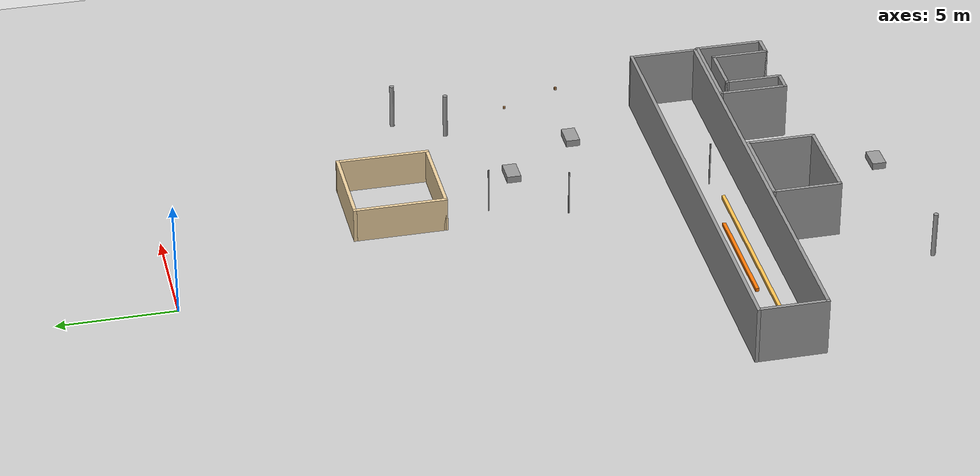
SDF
<sdf version="1.6">
 <world name="default">
  <model name="ground_plane">
   <static>1</static>
   <link name="link">
    <collision name="collision">
     <geometry><plane><normal>0 0 1</normal><size>105 105</size></plane></geometry>
     <surface>
      <contact><collide_bitmask>65535</collide_bitmask></contact>
      <friction><ode><mu>100</mu><mu2>50</mu2></ode></friction>
     </surface>
    </collision>
    <visual name="visual">
     <cast_shadows>0</cast_shadows>
     <geometry><plane><normal>0 0 1</normal><size>105 105</size></plane></geometry>
     <material>
      <script><uri>file://media/materials/scripts/gazebo.material</uri><name>Gazebo/Grey</name></script>
     </material>
    </visual>
   </link>
  </model>
  <model name="base3x20_2">
   <pose>1.5051 -23.232 0 0 -0 0</pose>
   <link name="Wall_16">
    <collision name="Wall_16_Collision">
     <geometry><box><size>3 0.15 2.5</size></box></geometry>
     <pose>0 0 1.25 0 -0 0</pose>
    </collision>
    <visual name="Wall_16_Visual">
     <pose>0 0 1.25 0 -0 0</pose>
     <geometry><box><size>3 0.15 2.5</size></box></geometry>
     <material>
      <script><uri>file://media/materials/scripts/gazebo.material</uri><name>Gazebo/Grey</name></script>
      <ambient>1 1 1 1</ambient>
     </material>
     <meta><layer>0</layer></meta>
    </visual>
    <pose>-9.925 -0 0 0 -0 -1.5708</pose>
   </link>
   <link name="Wall_17">
    <collision name="Wall_17_Collision">
     <geometry><box><size>20 0.15 2.5</size></box></geometry>
     <pose>0 0 1.25 0 -0 0</pose>
    </collision>
    <visual name="Wall_17_Visual">
     <pose>0 0 1.25 0 -0 0</pose>
     <geometry><box><size>20 0.15 2.5</size></box></geometry>
     <material>
      <script><uri>file://media/materials/scripts/gazebo.material</uri><name>Gazebo/Grey</name></script>
      <ambient>1 1 1 1</ambient>
     </material>
     <meta><layer>0</layer></meta>
    </visual>
    <pose>-0 -1.425 0 0 -0 0</pose>
   </link>
   <link name="Wall_18">
    <collision name="Wall_18_Collision">
     <geometry><box><size>3 0.15 2.5</size></box></geometry>
     <pose>0 0 1.25 0 -0 0</pose>
    </collision>
    <visual name="Wall_18_Visual">
     <pose>0 0 1.25 0 -0 0</pose>
     <geometry><box><size>3 0.15 2.5</size></box></geometry>
     <material>
      <script><uri>file://media/materials/scripts/gazebo.material</uri><name>Gazebo/Grey</name></script>
      <ambient>1 1 1 1</ambient>
     </material>
     <meta><layer>0</layer></meta>
    </visual>
    <pose>9.925 -0 0 0 -0 1.5708</pose>
   </link>
   <link name="Wall_19">
    <collision name="Wall_19_Collision">
     <geometry><box><size>20 0.15 2.5</size></box></geometry>
     <pose>0 0 1.25 0 -0 0</pose>
    </collision>
    <visual name="Wall_19_Visual">
     <pose>0 0 1.25 0 -0 0</pose>
     <geometry><box><size>20 0.15 2.5</size></box></geometry>
     <material>
      <script><uri>file://media/materials/scripts/gazebo.material</uri><name>Gazebo/Grey</name></script>
      <ambient>1 1 1 1</ambient>
     </material>
     <meta><layer>0</layer></meta>
    </visual>
    <pose>-0 1.425 0 0 -0 3.14159</pose>
   </link>
   <static>1</static>
  </model>
  <model name="bar10x0.15x0.15">
   <pose>-1.69484 -23.7489 0 0 -0 0</pose>
   <link name="Wall_5">
    <collision name="Wall_5_Collision">
     <geometry><box><size>10 0.15 0.15</size></box></geometry>
     <pose>0 0 0.075 0 -0 0</pose>
    </collision>
    <visual name="Wall_5_Visual">
     <pose>0 0 0.075 0 -0 0</pose>
     <geometry><box><size>10 0.15 0.15</size></box></geometry>
     <material>
      <script><uri>file://media/materials/scripts/gazebo.material</uri><name>Gazebo/Grey</name></script>
      <ambient>1 0.764706 0.305882 1</ambient>
     </material>
     <meta><layer>0</layer></meta>
    </visual>
   </link>
   <static>1</static>
  </model>
  <model name="bar5x0.15x0.15">
   <pose>-1.24356 -23.2103 0 0 -0 0</pose>
   <link name="Wall_12">
    <collision name="Wall_12_Collision">
     <geometry><box><size>5 0.15 0.15</size></box></geometry>
     <pose>0 0 0.075 0 -0 0</pose>
    </collision>
    <visual name="Wall_12_Visual">
     <pose>0 0 0.075 0 -0 0</pose>
     <geometry><box><size>5 0.15 0.15</size></box></geometry>
     <material>
      <script><uri>file://media/materials/scripts/gazebo.material</uri><name>Gazebo/Grey</name></script>
      <ambient>0.996078 0.47451 0.0196078 1</ambient>
     </material>
     <meta><layer>0</layer></meta>
    </visual>
   </link>
   <static>1</static>
  </model>
  <model name="unit_box_100x60x30cm_2">
   <link name="link">
    <inertial>
     <mass>1</mass>
     <inertia>
      <ixx>0.166667</ixx>
      <ixy>0</ixy>
      <ixz>0</ixz>
      <iyy>0.166667</iyy>
      <iyz>0</iyz>
      <izz>0.166667</izz>
     </inertia>
    </inertial>
    <visual name="visual">
     <geometry><box><size>1 0.6 0.3</size></box></geometry>
     <material>
      <script><name>Gazebo/Grey</name><uri>file://media/materials/scripts/gazebo.material</uri></script>
      <shader type="vertex"><normal_map>__default__</normal_map></shader>
      <ambient>0.3 0.3 0.3 1</ambient>
      <diffuse>0.7 0.7 0.7 1</diffuse>
      <specular>0.01 0.01 0.01 1</specular>
      <emissive>0 0 0 1</emissive>
     </material>
    </visual>
    <collision name="collision">
     <geometry><box><size>1 0.6 0.3</size></box></geometry>
     <surface>
      <friction>
       <ode><mu>1</mu><mu2>1</mu2><fdir1>0 0 0</fdir1><slip1>0</slip1><slip2>0</slip2></ode>
       <torsional>
        <coefficient>1</coefficient>
        <patch_radius>0</patch_radius>
        <surface_radius>0</surface_radius>
        <use_patch_radius>1</use_patch_radius>
        <ode><slip>0</slip></ode>
       </torsional>
      </friction>
      <bounce><restitution_coefficient>0</restitution_coefficient><threshold>1e+06</threshold></bounce>
      <contact>
       <collide_without_contact>0</collide_without_contact>
       <collide_without_contact_bitmask>1</collide_without_contact_bitmask>
       <collide_bitmask>1</collide_bitmask>
       <ode>
        <soft_cfm>0</soft_cfm>
        <soft_erp>0.2</soft_erp>
        <kp>1e+13</kp>
        <kd>1</kd>
        <max_vel>0.01</max_vel>
        <min_depth>0</min_depth>
       </ode>
       <bullet>
        <split_impulse>1</split_impulse>
        <split_impulse_penetration_threshold>-0.01</split_impulse_penetration_threshold>
        <soft_cfm>0</soft_cfm>
        <soft_erp>0.2</soft_erp>
        <kp>1e+13</kp>
        <kd>1</kd>
       </bullet>
      </contact>
     </surface>
    </collision>
   </link>
   <static>0</static>
   <pose>6.9397 -15.3861 0.15 0 -0 0</pose>
  </model>
  <model name="box4x4x1.5_2">
   <pose>5.45303 -9.87303 0 0 -0 0</pose>
   <link name="Wall_5">
    <collision name="Wall_5_Collision">
     <geometry><box><size>4 0.15 1.5</size></box></geometry>
     <pose>0 0 0.75 0 -0 0</pose>
    </collision>
    <visual name="Wall_5_Visual">
     <pose>0 0 0.75 0 -0 0</pose>
     <geometry><box><size>4 0.15 1.5</size></box></geometry>
     <material>
      <script><uri>file://media/materials/scripts/gazebo.material</uri><name>Gazebo/Grey</name></script>
      <ambient>0.921569 0.807843 0.615686 1</ambient>
     </material>
     <meta><layer>0</layer></meta>
    </visual>
    <pose>-1.925 -0 0 0 -0 -1.5708</pose>
   </link>
   <link name="Wall_6">
    <collision name="Wall_6_Collision">
     <geometry><box><size>4 0.15 1.5</size></box></geometry>
     <pose>0 0 0.75 0 -0 0</pose>
    </collision>
    <visual name="Wall_6_Visual">
     <pose>0 0 0.75 0 -0 0</pose>
     <geometry><box><size>4 0.15 1.5</size></box></geometry>
     <material>
      <script><uri>file://media/materials/scripts/gazebo.material</uri><name>Gazebo/Grey</name></script>
      <ambient>0.921569 0.807843 0.615686 1</ambient>
     </material>
     <meta><layer>0</layer></meta>
    </visual>
    <pose>0 -1.925 0 0 -0 0</pose>
   </link>
   <link name="Wall_7">
    <collision name="Wall_7_Collision">
     <geometry><box><size>4 0.15 1.5</size></box></geometry>
     <pose>0 0 0.75 0 -0 0</pose>
    </collision>
    <visual name="Wall_7_Visual">
     <pose>0 0 0.75 0 -0 0</pose>
     <geometry><box><size>4 0.15 1.5</size></box></geometry>
     <material>
      <script><uri>file://media/materials/scripts/gazebo.material</uri><name>Gazebo/Grey</name></script>
      <ambient>0.921569 0.807843 0.615686 1</ambient>
     </material>
     <meta><layer>0</layer></meta>
    </visual>
    <pose>1.925 -0 0 0 -0 1.5708</pose>
   </link>
   <link name="Wall_8">
    <collision name="Wall_8_Collision">
     <geometry><box><size>4 0.15 1.5</size></box></geometry>
     <pose>0 0 0.75 0 -0 0</pose>
    </collision>
    <visual name="Wall_8_Visual">
     <pose>0 0 0.75 0 -0 0</pose>
     <geometry><box><size>4 0.15 1.5</size></box></geometry>
     <material>
      <script><uri>file://media/materials/scripts/gazebo.material</uri><name>Gazebo/Grey</name></script>
      <ambient>0.921569 0.807843 0.615686 1</ambient>
     </material>
     <meta><layer>0</layer></meta>
    </visual>
    <pose>0 1.925 0 0 -0 3.14159</pose>
   </link>
   <static>1</static>
  </model>
  <model name="base3x4_27">
   <pose>1.59388 -26.2311 0 0 -0 0</pose>
   <link name="Wall_18">
    <collision name="Wall_18_Collision">
     <geometry><box><size>3 0.15 2.5</size></box></geometry>
     <pose>0 0 1.25 0 -0 0</pose>
    </collision>
    <visual name="Wall_18_Visual">
     <pose>0 0 1.25 0 -0 0</pose>
     <geometry><box><size>3 0.15 2.5</size></box></geometry>
     <material>
      <script><uri>file://media/materials/scripts/gazebo.material</uri><name>Gazebo/Grey</name></script>
      <ambient>1 1 1 1</ambient>
     </material>
     <meta><layer>0</layer></meta>
    </visual>
    <pose>-1.925 -0 0 0 -0 -1.5708</pose>
   </link>
   <link name="Wall_19">
    <collision name="Wall_19_Collision">
     <geometry><box><size>4 0.15 2.5</size></box></geometry>
     <pose>0 0 1.25 0 -0 0</pose>
    </collision>
    <visual name="Wall_19_Visual">
     <pose>0 0 1.25 0 -0 0</pose>
     <geometry><box><size>4 0.15 2.5</size></box></geometry>
     <material>
      <script><uri>file://media/materials/scripts/gazebo.material</uri><name>Gazebo/Grey</name></script>
      <ambient>1 1 1 1</ambient>
     </material>
     <meta><layer>0</layer></meta>
    </visual>
    <pose>-0 -1.425 0 0 -0 0</pose>
   </link>
   <link name="Wall_20">
    <collision name="Wall_20_Collision">
     <geometry><box><size>3 0.15 2.5</size></box></geometry>
     <pose>0 0 1.25 0 -0 0</pose>
    </collision>
    <visual name="Wall_20_Visual">
     <pose>0 0 1.25 0 -0 0</pose>
     <geometry><box><size>3 0.15 2.5</size></box></geometry>
     <material>
      <script><uri>file://media/materials/scripts/gazebo.material</uri><name>Gazebo/Grey</name></script>
      <ambient>1 1 1 1</ambient>
     </material>
     <meta><layer>0</layer></meta>
    </visual>
    <pose>1.925 -0 0 0 -0 1.5708</pose>
   </link>
   <link name="Wall_21">
    <collision name="Wall_21_Collision">
     <geometry><box><size>4 0.15 2.5</size></box></geometry>
     <pose>0 0 1.25 0 -0 0</pose>
    </collision>
    <visual name="Wall_21_Visual">
     <pose>0 0 1.25 0 -0 0</pose>
     <geometry><box><size>4 0.15 2.5</size></box></geometry>
     <material>
      <script><uri>file://media/materials/scripts/gazebo.material</uri><name>Gazebo/Grey</name></script>
      <ambient>1 1 1 1</ambient>
     </material>
     <meta><layer>0</layer></meta>
    </visual>
    <pose>-0 1.425 0 0 -0 3.14159</pose>
   </link>
   <static>1</static>
  </model>
  <model name="box_u_v4X3X2.5_3">
   <pose>9.58338 -26.2266 0 0 -0 0</pose>
   <link name="Wall_30">
    <collision name="Wall_30_Collision">
     <geometry><box><size>3 0.15 2.5</size></box></geometry>
     <pose>0 0 1.25 0 -0 0</pose>
    </collision>
    <visual name="Wall_30_Visual">
     <pose>0 0 1.25 0 -0 0</pose>
     <geometry><box><size>3 0.15 2.5</size></box></geometry>
     <material>
      <script><uri>file://media/materials/scripts/gazebo.material</uri><name>Gazebo/Grey</name></script>
      <ambient>1 1 1 1</ambient>
     </material>
     <meta><layer>0</layer></meta>
    </visual>
    <pose>-1.925 0 0 0 -0 -1.5708</pose>
   </link>
   <link name="Wall_32">
    <collision name="Wall_32_Collision">
     <geometry><box><size>4 0.15 2.5</size></box></geometry>
     <pose>0 0 1.25 0 -0 0</pose>
    </collision>
    <visual name="Wall_32_Visual">
     <pose>0 0 1.25 0 -0 0</pose>
     <geometry><box><size>4 0.15 2.5</size></box></geometry>
     <material>
      <script><uri>file://media/materials/scripts/gazebo.material</uri><name>Gazebo/Grey</name></script>
      <ambient>1 1 1 1</ambient>
     </material>
     <meta><layer>0</layer></meta>
    </visual>
    <pose>0 1.425 0 0 -0 0</pose>
   </link>
   <link name="Wall_33">
    <collision name="Wall_33_Collision">
     <geometry><box><size>3 0.15 2.5</size></box></geometry>
     <pose>0 0 1.25 0 -0 0</pose>
    </collision>
    <visual name="Wall_33_Visual">
     <pose>0 0 1.25 0 -0 0</pose>
     <geometry><box><size>3 0.15 2.5</size></box></geometry>
     <material>
      <script><uri>file://media/materials/scripts/gazebo.material</uri><name>Gazebo/Grey</name></script>
      <ambient>1 1 1 1</ambient>
     </material>
     <meta><layer>0</layer></meta>
    </visual>
    <pose>1.925 0 0 0 -0 -1.5708</pose>
   </link>
   <link name="Wall_34">
    <collision name="Wall_34_Collision">
     <geometry><box><size>1 0.15 2.5</size></box></geometry>
     <pose>0 0 1.25 0 -0 0</pose>
    </collision>
    <visual name="Wall_34_Visual">
     <pose>0 0 1.25 0 -0 0</pose>
     <geometry><box><size>1 0.15 2.5</size></box></geometry>
     <material>
      <script><uri>file://media/materials/scripts/gazebo.material</uri><name>Gazebo/Grey</name></script>
      <ambient>1 1 1 1</ambient>
     </material>
     <meta><layer>0</layer></meta>
    </visual>
    <pose>1.5 -1.425 0 0 -0 3.14159</pose>
   </link>
   <link name="Wall_35">
    <collision name="Wall_35_Collision">
     <geometry><box><size>2.5 0.15 2.5</size></box></geometry>
     <pose>0 0 1.25 0 -0 0</pose>
    </collision>
    <visual name="Wall_35_Visual">
     <pose>0 0 1.25 0 -0 0</pose>
     <geometry><box><size>2.5 0.15 2.5</size></box></geometry>
     <material>
      <script><uri>file://media/materials/scripts/gazebo.material</uri><name>Gazebo/Grey</name></script>
      <ambient>1 1 1 1</ambient>
     </material>
     <meta><layer>0</layer></meta>
    </visual>
    <pose>1.075 -0.25 0 0 -0 1.5708</pose>
   </link>
   <link name="Wall_37">
    <collision name="Wall_37_Collision">
     <geometry><box><size>1 0.15 2.5</size></box></geometry>
     <pose>0 0 1.25 0 -0 0</pose>
    </collision>
    <visual name="Wall_37_Visual">
     <pose>0 0 1.25 0 -0 0</pose>
     <geometry><box><size>1 0.15 2.5</size></box></geometry>
     <material>
      <script><uri>file://media/materials/scripts/gazebo.material</uri><name>Gazebo/Grey</name></script>
      <ambient>1 1 1 1</ambient>
     </material>
     <meta><layer>0</layer></meta>
    </visual>
    <pose>-1.5 -1.425 0 0 -0 0</pose>
   </link>
   <link name="Wall_38">
    <collision name="Wall_38_Collision">
     <geometry><box><size>2.5 0.15 2.5</size></box></geometry>
     <pose>0 0 1.25 0 -0 0</pose>
    </collision>
    <visual name="Wall_38_Visual">
     <pose>0 0 1.25 0 -0 0</pose>
     <geometry><box><size>2.5 0.15 2.5</size></box></geometry>
     <material>
      <script><uri>file://media/materials/scripts/gazebo.material</uri><name>Gazebo/Grey</name></script>
      <ambient>1 1 1 1</ambient>
     </material>
     <meta><layer>0</layer></meta>
    </visual>
    <pose>-1.075 -0.25 0 0 -0 1.5708</pose>
   </link>
   <link name="Wall_39">
    <collision name="Wall_39_Collision">
     <geometry><box><size>2.3 0.15 2.5</size></box></geometry>
     <pose>0 0 1.25 0 -0 0</pose>
    </collision>
    <visual name="Wall_39_Visual">
     <pose>0 0 1.25 0 -0 0</pose>
     <geometry><box><size>2.3 0.15 2.5</size></box></geometry>
     <material>
      <script><uri>file://media/materials/scripts/gazebo.material</uri><name>Gazebo/Grey</name></script>
      <ambient>1 1 1 1</ambient>
     </material>
     <meta><layer>0</layer></meta>
    </visual>
    <pose>0 0.925 0 0 -0 0</pose>
   </link>
   <static>1</static>
  </model>
  <model name="unit_box_100x60x30cm_0_clone_4">
   <link name="link">
    <inertial>
     <mass>1</mass>
     <inertia>
      <ixx>0.166667</ixx>
      <ixy>0</ixy>
      <ixz>0</ixz>
      <iyy>0.166667</iyy>
      <iyz>0</iyz>
      <izz>0.166667</izz>
     </inertia>
    </inertial>
    <visual name="visual">
     <geometry><box><size>1 0.6 0.3</size></box></geometry>
     <material>
      <script><name>Gazebo/Grey</name><uri>file://media/materials/scripts/gazebo.material</uri></script>
      <shader type="vertex"><normal_map>__default__</normal_map></shader>
      <ambient>0.3 0.3 0.3 1</ambient>
      <diffuse>0.7 0.7 0.7 1</diffuse>
      <specular>0.01 0.01 0.01 1</specular>
      <emissive>0 0 0 1</emissive>
     </material>
    </visual>
    <collision name="collision">
     <geometry><box><size>1 0.6 0.3</size></box></geometry>
     <surface>
      <friction>
       <ode><mu>1</mu><mu2>1</mu2><fdir1>0 0 0</fdir1><slip1>0</slip1><slip2>0</slip2></ode>
       <torsional>
        <coefficient>1</coefficient>
        <patch_radius>0</patch_radius>
        <surface_radius>0</surface_radius>
        <use_patch_radius>1</use_patch_radius>
        <ode><slip>0</slip></ode>
       </torsional>
      </friction>
      <bounce><restitution_coefficient>0</restitution_coefficient><threshold>1e+06</threshold></bounce>
      <contact>
       <collide_without_contact>0</collide_without_contact>
       <collide_without_contact_bitmask>1</collide_without_contact_bitmask>
       <collide_bitmask>1</collide_bitmask>
       <ode>
        <soft_cfm>0</soft_cfm>
        <soft_erp>0.2</soft_erp>
        <kp>1e+13</kp>
        <kd>1</kd>
        <max_vel>0.01</max_vel>
        <min_depth>0</min_depth>
       </ode>
       <bullet>
        <split_impulse>1</split_impulse>
        <split_impulse_penetration_threshold>-0.01</split_impulse_penetration_threshold>
        <soft_cfm>0</soft_cfm>
        <soft_erp>0.2</soft_erp>
        <kp>1e+13</kp>
        <kd>1</kd>
       </bullet>
      </contact>
     </surface>
    </collision>
   </link>
   <static>0</static>
   <pose>4.56841 -30.8986 0.15 0 -0 0</pose>
  </model>
  <model name="unit_box_100x60x30cm_0_clone_10">
   <link name="link">
    <inertial>
     <mass>1</mass>
     <inertia>
      <ixx>0.166667</ixx>
      <ixy>0</ixy>
      <ixz>0</ixz>
      <iyy>0.166667</iyy>
      <iyz>0</iyz>
      <izz>0.166667</izz>
     </inertia>
    </inertial>
    <visual name="visual">
     <geometry><box><size>1 0.6 0.3</size></box></geometry>
     <material>
      <script><name>Gazebo/Grey</name><uri>file://media/materials/scripts/gazebo.material</uri></script>
      <shader type="vertex"><normal_map>__default__</normal_map></shader>
      <ambient>0.3 0.3 0.3 1</ambient>
      <diffuse>0.7 0.7 0.7 1</diffuse>
      <specular>0.01 0.01 0.01 1</specular>
      <emissive>0 0 0 1</emissive>
     </material>
    </visual>
    <collision name="collision">
     <geometry><box><size>1 0.6 0.3</size></box></geometry>
     <surface>
      <friction>
       <ode><mu>1</mu><mu2>1</mu2><fdir1>0 0 0</fdir1><slip1>0</slip1><slip2>0</slip2></ode>
       <torsional>
        <coefficient>1</coefficient>
        <patch_radius>0</patch_radius>
        <surface_radius>0</surface_radius>
        <use_patch_radius>1</use_patch_radius>
        <ode><slip>0</slip></ode>
       </torsional>
      </friction>
      <bounce><restitution_coefficient>0</restitution_coefficient><threshold>1e+06</threshold></bounce>
      <contact>
       <collide_without_contact>0</collide_without_contact>
       <collide_without_contact_bitmask>1</collide_without_contact_bitmask>
       <collide_bitmask>1</collide_bitmask>
       <ode>
        <soft_cfm>0</soft_cfm>
        <soft_erp>0.2</soft_erp>
        <kp>1e+13</kp>
        <kd>1</kd>
        <max_vel>0.01</max_vel>
        <min_depth>0</min_depth>
       </ode>
       <bullet>
        <split_impulse>1</split_impulse>
        <split_impulse_penetration_threshold>-0.01</split_impulse_penetration_threshold>
        <soft_cfm>0</soft_cfm>
        <soft_erp>0.2</soft_erp>
        <kp>1e+13</kp>
        <kd>1</kd>
       </bullet>
      </contact>
     </surface>
    </collision>
   </link>
   <static>0</static>
   <pose>9.21377 -18.5251 0.15 0 -0 0</pose>
  </model>
  <model name="wood_cube_10cm_4_clone">
   <link name="link">
    <pose>0 0 0.05 0 -0 0</pose>
    <inertial>
     <mass>0.5167</mass>
     <inertia>
      <ixx>0.000861167</ixx>
      <ixy>0</ixy>
      <ixz>0</ixz>
      <iyy>0.000861167</iyy>
      <iyz>0</iyz>
      <izz>0.000861167</izz>
     </inertia>
    </inertial>
    <collision name="collision">
     <geometry><box><size>0.1 0.1 0.1</size></box></geometry>
     <surface>
      <contact>
       <poissons_ratio>0.347</poissons_ratio>
       <elastic_modulus>8.8e+09</elastic_modulus>
       <ode><kp>100000</kp><kd>100</kd><max_vel>100</max_vel><min_depth>0.001</min_depth></ode>
      </contact>
      <friction>
       <torsional>
        <coefficient>1</coefficient>
        <use_patch_radius>0</use_patch_radius>
        <surface_radius>0.01</surface_radius>
       </torsional>
      </friction>
     </surface>
    </collision>
    <visual name="visual">
     <geometry><box><size>0.1 0.1 0.1</size></box></geometry>
     <material>
      <script><uri>file://media/materials/scripts/gazebo.material</uri><name>Gazebo/Wood</name></script>
     </material>
    </visual>
   </link>
   <pose>13.5113 -18.8772 -0.001013 0 -0 0</pose>
  </model>
  <model name="wood_cube_10cm_4_clone_1">
   <link name="link">
    <pose>0 0 0.05 0 -0 0</pose>
    <inertial>
     <mass>0.5167</mass>
     <inertia>
      <ixx>0.000861167</ixx>
      <ixy>0</ixy>
      <ixz>0</ixz>
      <iyy>0.000861167</iyy>
      <iyz>0</iyz>
      <izz>0.000861167</izz>
     </inertia>
    </inertial>
    <collision name="collision">
     <geometry><box><size>0.1 0.1 0.1</size></box></geometry>
     <surface>
      <contact>
       <poissons_ratio>0.347</poissons_ratio>
       <elastic_modulus>8.8e+09</elastic_modulus>
       <ode><kp>100000</kp><kd>100</kd><max_vel>100</max_vel><min_depth>0.001</min_depth></ode>
      </contact>
      <friction>
       <torsional>
        <coefficient>1</coefficient>
        <use_patch_radius>0</use_patch_radius>
        <surface_radius>0.01</surface_radius>
       </torsional>
      </friction>
     </surface>
    </collision>
    <visual name="visual">
     <geometry><box><size>0.1 0.1 0.1</size></box></geometry>
     <material>
      <script><uri>file://media/materials/scripts/gazebo.material</uri><name>Gazebo/Wood</name></script>
     </material>
    </visual>
   </link>
   <pose>12.4294 -16.3063 -0.001013 0 -0 0</pose>
  </model>
  <model name="unit_cylinder_r0.1_l2m_0">
   <link name="link">
    <inertial>
     <mass>1</mass>
     <inertia><ixx>0.145833</ixx><ixy>0</ixy><ixz>0</ixz><iyy>0.145833</iyy><iyz>0</iyz><izz>0.125</izz></inertia>
    </inertial>
    <visual name="visual">
     <geometry><cylinder><radius>0.1</radius><length>2</length></cylinder></geometry>
     <material>
      <script><name>Gazebo/Grey</name><uri>file://media/materials/scripts/gazebo.material</uri></script>
      <shader type="vertex"><normal_map>__default__</normal_map></shader>
      <ambient>0.3 0.3 0.3 1</ambient>
      <diffuse>0.7 0.7 0.7 1</diffuse>
      <specular>0.01 0.01 0.01 1</specular>
      <emissive>0 0 0 1</emissive>
     </material>
    </visual>
    <collision name="collision">
     <geometry><cylinder><radius>0.1</radius><length>2</length></cylinder></geometry>
     <surface>
      <friction>
       <ode><mu>1</mu><mu2>1</mu2><fdir1>0 0 0</fdir1><slip1>0</slip1><slip2>0</slip2></ode>
       <torsional>
        <coefficient>1</coefficient>
        <patch_radius>0</patch_radius>
        <surface_radius>0</surface_radius>
        <use_patch_radius>1</use_patch_radius>
        <ode><slip>0</slip></ode>
       </torsional>
      </friction>
      <bounce><restitution_coefficient>0</restitution_coefficient><threshold>1e+06</threshold></bounce>
      <contact>
       <collide_without_contact>0</collide_without_contact>
       <collide_without_contact_bitmask>1</collide_without_contact_bitmask>
       <collide_bitmask>1</collide_bitmask>
       <ode>
        <soft_cfm>0</soft_cfm>
        <soft_erp>0.2</soft_erp>
        <kp>1e+13</kp>
        <kd>1</kd>
        <max_vel>0.01</max_vel>
        <min_depth>0</min_depth>
       </ode>
       <bullet>
        <split_impulse>1</split_impulse>
        <split_impulse_penetration_threshold>-0.01</split_impulse_penetration_threshold>
        <soft_cfm>0</soft_cfm>
        <soft_erp>0.2</soft_erp>
        <kp>1e+13</kp>
        <kd>1</kd>
       </bullet>
      </contact>
     </surface>
    </collision>
   </link>
   <static>0</static>
   <pose>12.0857 -11.2161 0.999808 -9e-06 1.9e-05 -0.032086</pose>
  </model>
  <model name="unit_cylinder_r0.1_l2m">
   <link name="link">
    <inertial>
     <mass>1</mass>
     <inertia><ixx>0.145833</ixx><ixy>0</ixy><ixz>0</ixz><iyy>0.145833</iyy><iyz>0</iyz><izz>0.125</izz></inertia>
    </inertial>
    <visual name="visual">
     <geometry><cylinder><radius>0.1</radius><length>2</length></cylinder></geometry>
     <material>
      <script><name>Gazebo/Grey</name><uri>file://media/materials/scripts/gazebo.material</uri></script>
      <shader type="vertex"><normal_map>__default__</normal_map></shader>
      <ambient>0.3 0.3 0.3 1</ambient>
      <diffuse>0.7 0.7 0.7 1</diffuse>
      <specular>0.01 0.01 0.01 1</specular>
      <emissive>0 0 0 1</emissive>
     </material>
    </visual>
    <collision name="collision">
     <geometry><cylinder><radius>0.1</radius><length>2</length></cylinder></geometry>
     <surface>
      <friction>
       <ode><mu>1</mu><mu2>1</mu2><fdir1>0 0 0</fdir1><slip1>0</slip1><slip2>0</slip2></ode>
       <torsional>
        <coefficient>1</coefficient>
        <patch_radius>0</patch_radius>
        <surface_radius>0</surface_radius>
        <use_patch_radius>1</use_patch_radius>
        <ode><slip>0</slip></ode>
       </torsional>
      </friction>
      <bounce><restitution_coefficient>0</restitution_coefficient><threshold>1e+06</threshold></bounce>
      <contact>
       <collide_without_contact>0</collide_without_contact>
       <collide_without_contact_bitmask>1</collide_without_contact_bitmask>
       <collide_bitmask>1</collide_bitmask>
       <ode>
        <soft_cfm>0</soft_cfm>
        <soft_erp>0.2</soft_erp>
        <kp>1e+13</kp>
        <kd>1</kd>
        <max_vel>0.01</max_vel>
        <min_depth>0</min_depth>
       </ode>
       <bullet>
        <split_impulse>1</split_impulse>
        <split_impulse_penetration_threshold>-0.01</split_impulse_penetration_threshold>
        <soft_cfm>0</soft_cfm>
        <soft_erp>0.2</soft_erp>
        <kp>1e+13</kp>
        <kd>1</kd>
       </bullet>
      </contact>
     </surface>
    </collision>
   </link>
   <static>0</static>
   <pose>10.8036 -13.314 0.999808 -9e-06 1.9e-05 -0.032086</pose>
  </model>
  <model name="unit_cylinder_r0.1_l2m_0_clone_4">
   <link name="link">
    <inertial>
     <mass>1</mass>
     <inertia><ixx>0.145833</ixx><ixy>0</ixy><ixz>0</ixz><iyy>0.145833</iyy><iyz>0</iyz><izz>0.125</izz></inertia>
    </inertial>
    <visual name="visual">
     <geometry><cylinder><radius>0.1</radius><length>2</length></cylinder></geometry>
     <material>
      <script><name>Gazebo/Grey</name><uri>file://media/materials/scripts/gazebo.material</uri></script>
      <shader type="vertex"><normal_map>__default__</normal_map></shader>
      <ambient>0.3 0.3 0.3 1</ambient>
      <diffuse>0.7 0.7 0.7 1</diffuse>
      <specular>0.01 0.01 0.01 1</specular>
      <emissive>0 0 0 1</emissive>
     </material>
    </visual>
    <collision name="collision">
     <geometry><cylinder><radius>0.1</radius><length>2</length></cylinder></geometry>
     <surface>
      <friction>
       <ode><mu>1</mu><mu2>1</mu2><fdir1>0 0 0</fdir1><slip1>0</slip1><slip2>0</slip2></ode>
       <torsional>
        <coefficient>1</coefficient>
        <patch_radius>0</patch_radius>
        <surface_radius>0</surface_radius>
        <use_patch_radius>1</use_patch_radius>
        <ode><slip>0</slip></ode>
       </torsional>
      </friction>
      <bounce><restitution_coefficient>0</restitution_coefficient><threshold>1e+06</threshold></bounce>
      <contact>
       <collide_without_contact>0</collide_without_contact>
       <collide_without_contact_bitmask>1</collide_without_contact_bitmask>
       <collide_bitmask>1</collide_bitmask>
       <ode>
        <soft_cfm>0</soft_cfm>
        <soft_erp>0.2</soft_erp>
        <kp>1e+13</kp>
        <kd>1</kd>
        <max_vel>0.01</max_vel>
        <min_depth>0</min_depth>
       </ode>
       <bullet>
        <split_impulse>1</split_impulse>
        <split_impulse_penetration_threshold>-0.01</split_impulse_penetration_threshold>
        <soft_cfm>0</soft_cfm>
        <soft_erp>0.2</soft_erp>
        <kp>1e+13</kp>
        <kd>1</kd>
       </bullet>
      </contact>
     </surface>
    </collision>
   </link>
   <static>0</static>
   <pose>-2.72246 -31.0547 0.999808 -9e-06 1.9e-05 -0.032086</pose>
  </model>
  <model name="unit_box_5cmx5cmx2m">
   <link name="link">
    <inertial>
     <mass>1</mass>
     <inertia>
      <ixx>0.166667</ixx>
      <ixy>0</ixy>
      <ixz>0</ixz>
      <iyy>0.166667</iyy>
      <iyz>0</iyz>
      <izz>0.166667</izz>
     </inertia>
    </inertial>
    <visual name="visual">
     <geometry><box><size>0.05 0.05 2</size></box></geometry>
     <material>
      <script><name>Gazebo/Grey</name><uri>file://media/materials/scripts/gazebo.material</uri></script>
      <shader type="vertex"><normal_map>__default__</normal_map></shader>
      <ambient>0.3 0.3 0.3 1</ambient>
      <diffuse>0.7 0.7 0.7 1</diffuse>
      <specular>0.01 0.01 0.01 1</specular>
      <emissive>0 0 0 1</emissive>
     </material>
    </visual>
    <collision name="collision">
     <geometry><box><size>0.05 0.05 2</size></box></geometry>
     <surface>
      <friction>
       <ode><mu>1</mu><mu2>1</mu2><fdir1>0 0 0</fdir1><slip1>0</slip1><slip2>0</slip2></ode>
       <torsional>
        <coefficient>1</coefficient>
        <patch_radius>0</patch_radius>
        <surface_radius>0</surface_radius>
        <use_patch_radius>1</use_patch_radius>
        <ode><slip>0</slip></ode>
       </torsional>
      </friction>
      <bounce><restitution_coefficient>0</restitution_coefficient><threshold>1e+06</threshold></bounce>
      <contact>
       <collide_without_contact>0</collide_without_contact>
       <collide_without_contact_bitmask>1</collide_without_contact_bitmask>
       <collide_bitmask>1</collide_bitmask>
       <ode>
        <soft_cfm>0</soft_cfm>
        <soft_erp>0.2</soft_erp>
        <kp>1e+13</kp>
        <kd>1</kd>
        <max_vel>0.01</max_vel>
        <min_depth>0</min_depth>
       </ode>
       <bullet>
        <split_impulse>1</split_impulse>
        <split_impulse_penetration_threshold>-0.01</split_impulse_penetration_threshold>
        <soft_cfm>0</soft_cfm>
        <soft_erp>0.2</soft_erp>
        <kp>1e+13</kp>
        <kd>1</kd>
       </bullet>
      </contact>
     </surface>
    </collision>
   </link>
   <static>0</static>
   <pose>4.52765 -23.4699 0.999756 -1.4e-05 8e-06 0.004572</pose>
  </model>
  <model name="unit_box_5cmx5cmx2m_clone">
   <link name="link">
    <inertial>
     <mass>1</mass>
     <inertia>
      <ixx>0.166667</ixx>
      <ixy>0</ixy>
      <ixz>0</ixz>
      <iyy>0.166667</iyy>
      <iyz>0</iyz>
      <izz>0.166667</izz>
     </inertia>
    </inertial>
    <visual name="visual">
     <geometry><box><size>0.05 0.05 2</size></box></geometry>
     <material>
      <script><name>Gazebo/Grey</name><uri>file://media/materials/scripts/gazebo.material</uri></script>
      <shader type="vertex"><normal_map>__default__</normal_map></shader>
      <ambient>0.3 0.3 0.3 1</ambient>
      <diffuse>0.7 0.7 0.7 1</diffuse>
      <specular>0.01 0.01 0.01 1</specular>
      <emissive>0 0 0 1</emissive>
     </material>
    </visual>
    <collision name="collision">
     <geometry><box><size>0.05 0.05 2</size></box></geometry>
     <surface>
      <friction>
       <ode><mu>1</mu><mu2>1</mu2><fdir1>0 0 0</fdir1><slip1>0</slip1><slip2>0</slip2></ode>
       <torsional>
        <coefficient>1</coefficient>
        <patch_radius>0</patch_radius>
        <surface_radius>0</surface_radius>
        <use_patch_radius>1</use_patch_radius>
        <ode><slip>0</slip></ode>
       </torsional>
      </friction>
      <bounce><restitution_coefficient>0</restitution_coefficient><threshold>1e+06</threshold></bounce>
      <contact>
       <collide_without_contact>0</collide_without_contact>
       <collide_without_contact_bitmask>1</collide_without_contact_bitmask>
       <collide_bitmask>1</collide_bitmask>
       <ode>
        <soft_cfm>0</soft_cfm>
        <soft_erp>0.2</soft_erp>
        <kp>1e+13</kp>
        <kd>1</kd>
        <max_vel>0.01</max_vel>
        <min_depth>0</min_depth>
       </ode>
       <bullet>
        <split_impulse>1</split_impulse>
        <split_impulse_penetration_threshold>-0.01</split_impulse_penetration_threshold>
        <soft_cfm>0</soft_cfm>
        <soft_erp>0.2</soft_erp>
        <kp>1e+13</kp>
        <kd>1</kd>
       </bullet>
      </contact>
     </surface>
    </collision>
   </link>
   <static>0</static>
   <pose>3.64859 -17.1028 0.999756 -1.4e-05 8e-06 0.004572</pose>
  </model>
  <model name="unit_box_5cmx5cmx2m_clone_0">
   <link name="link">
    <inertial>
     <mass>1</mass>
     <inertia>
      <ixx>0.166667</ixx>
      <ixy>0</ixy>
      <ixz>0</ixz>
      <iyy>0.166667</iyy>
      <iyz>0</iyz>
      <izz>0.166667</izz>
     </inertia>
    </inertial>
    <visual name="visual">
     <geometry><box><size>0.05 0.05 2</size></box></geometry>
     <material>
      <script><name>Gazebo/Grey</name><uri>file://media/materials/scripts/gazebo.material</uri></script>
      <shader type="vertex"><normal_map>__default__</normal_map></shader>
      <ambient>0.3 0.3 0.3 1</ambient>
      <diffuse>0.7 0.7 0.7 1</diffuse>
      <specular>0.01 0.01 0.01 1</specular>
      <emissive>0 0 0 1</emissive>
     </material>
    </visual>
    <collision name="collision">
     <geometry><box><size>0.05 0.05 2</size></box></geometry>
     <surface>
      <friction>
       <ode><mu>1</mu><mu2>1</mu2><fdir1>0 0 0</fdir1><slip1>0</slip1><slip2>0</slip2></ode>
       <torsional>
        <coefficient>1</coefficient>
        <patch_radius>0</patch_radius>
        <surface_radius>0</surface_radius>
        <use_patch_radius>1</use_patch_radius>
        <ode><slip>0</slip></ode>
       </torsional>
      </friction>
      <bounce><restitution_coefficient>0</restitution_coefficient><threshold>1e+06</threshold></bounce>
      <contact>
       <collide_without_contact>0</collide_without_contact>
       <collide_without_contact_bitmask>1</collide_without_contact_bitmask>
       <collide_bitmask>1</collide_bitmask>
       <ode>
        <soft_cfm>0</soft_cfm>
        <soft_erp>0.2</soft_erp>
        <kp>1e+13</kp>
        <kd>1</kd>
        <max_vel>0.01</max_vel>
        <min_depth>0</min_depth>
       </ode>
       <bullet>
        <split_impulse>1</split_impulse>
        <split_impulse_penetration_threshold>-0.01</split_impulse_penetration_threshold>
        <soft_cfm>0</soft_cfm>
        <soft_erp>0.2</soft_erp>
        <kp>1e+13</kp>
        <kd>1</kd>
       </bullet>
      </contact>
     </surface>
    </collision>
   </link>
   <static>0</static>
   <pose>4.54378 -13.85 0.999756 -1.4e-05 8e-06 0.004572</pose>
  </model>
 </world>
</sdf>
